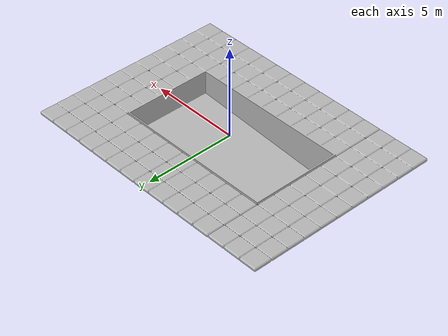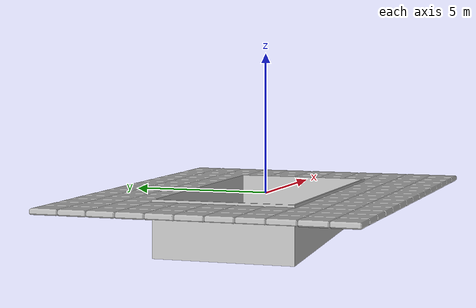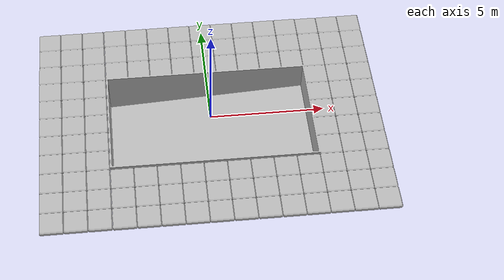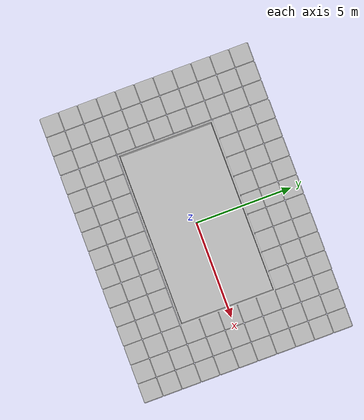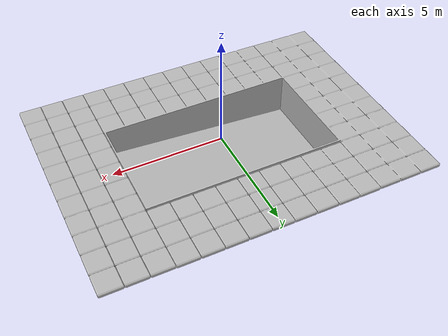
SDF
<?xml version="1.0" encoding="utf-8"?>

<sdf version="1.5">
    <model name="fortress_pool">
        <static>true</static>
        <link name="fortress_pool">
            <visual name="pool_visual">
                <pose>0 0 0 1.5708 0 0</pose>
                <geometry>
                    <mesh>
                        <uri>model://fortress_pool/meshes/pool-2.obj</uri>
                        <scale>0.5 0.5 0.5</scale>
                    </mesh>
                </geometry>
            </visual>
            <collision name="pool_visual">
                <pose>0 0 0 1.5708 0 0</pose>
                <geometry>
                    <mesh>
                        <uri>model://fortress_pool/meshes/pool-2.obj</uri>
                        <scale>0.5 0.5 0.5</scale>
                    </mesh>
                </geometry>
            </collision>
            <self_collide>0</self_collide>
        </link>
    </model>
</sdf>
